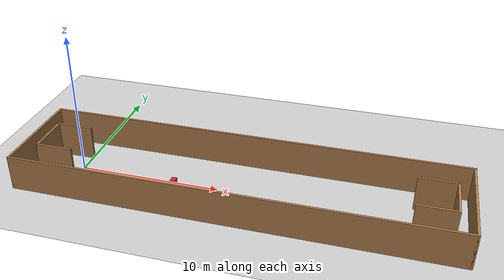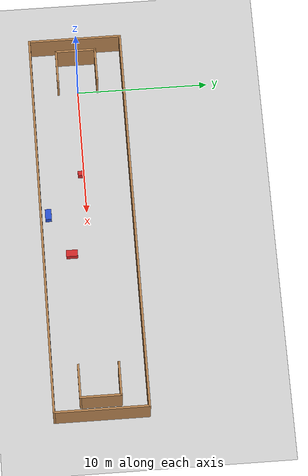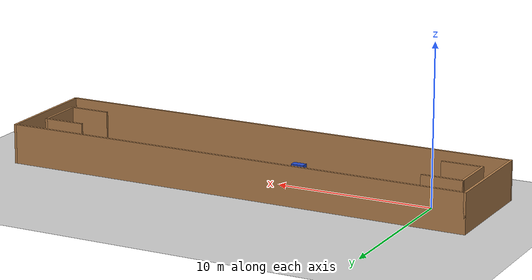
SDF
<sdf version="1.7">
 <world name="default">
  <light name="sun" type="directional">
   <pose>0 0 10 0 -0 0</pose>
   <diffuse>0.8 0.8 0.8 1</diffuse>
   <specular>0.2 0.2 0.2 1</specular>
   <attenuation>
    <range>1000</range>
    <constant>0.9</constant>
    <linear>0.01</linear>
    <quadratic>0.001</quadratic>
   </attenuation>
   <direction>-0.5 0.1 -0.9</direction>
   <spot><inner_angle>0</inner_angle><outer_angle>0</outer_angle><falloff>0</falloff></spot>
  </light>
  <model name="ground_plane">
   <static>1</static>
   <link name="link">
    <collision name="collision">
     <geometry><plane><normal>0 0 1</normal><size>100 100</size></plane></geometry>
     <surface>
      <contact><collide_bitmask>65535</collide_bitmask></contact>
      <friction><ode><mu>100</mu><mu2>50</mu2></ode></friction>
     </surface>
    </collision>
    <visual name="visual">
     <cast_shadows>0</cast_shadows>
     <geometry><plane><normal>0 0 1</normal><size>100 100</size></plane></geometry>
     <material>
      <script><uri>file://media/materials/scripts/gazebo.material</uri><name>Gazebo/Grey</name></script>
     </material>
    </visual>
   </link>
  </model>
  <gravity>0 0 -9.8</gravity>
  <magnetic_field>6e-06 2.3e-05 -4.2e-05</magnetic_field>
  <atmosphere type="adiabatic"/>
  <physics type="ode">
   <max_step_size>0.001</max_step_size>
   <real_time_factor>1</real_time_factor>
   <real_time_update_rate>1000</real_time_update_rate>
  </physics>
  <scene><ambient>0.4 0.4 0.4 1</ambient><background>0.7 0.7 0.7 1</background><shadows>1</shadows></scene>
  <spherical_coordinates>
   <surface_model>EARTH_WGS84</surface_model>
   <latitude_deg>0</latitude_deg>
   <longitude_deg>0</longitude_deg>
   <elevation>0</elevation>
   <heading_deg>0</heading_deg>
  </spherical_coordinates>
  <model name="my_base_walls">
   <link name="Wall_0">
    <collision name="Wall_0_Collision">
     <geometry><box><size>7.15 0.15 2.5</size></box></geometry>
     <pose>0 0 1.25 0 -0 0</pose>
    </collision>
    <visual name="Wall_0_Visual">
     <pose>0 0 1.25 0 -0 0</pose>
     <geometry><box><size>7.15 0.15 2.5</size></box></geometry>
     <material>
      <script><uri>file://media/materials/scripts/gazebo.material</uri><name>Gazebo/Wood</name></script>
      <ambient>1 1 1 1</ambient>
     </material>
     <meta><layer>0</layer></meta>
    </visual>
    <pose>-15 0 0 0 -0 1.5708</pose>
   </link>
   <link name="Wall_10">
    <collision name="Wall_10_Collision">
     <geometry><box><size>2.65 0.15 2.5</size></box></geometry>
     <pose>0 0 1.25 0 -0 0</pose>
    </collision>
    <visual name="Wall_10_Visual">
     <pose>0 0 1.25 0 -0 0</pose>
     <geometry><box><size>2.65 0.15 2.5</size></box></geometry>
     <material>
      <script><uri>file://media/materials/scripts/gazebo.material</uri><name>Gazebo/Wood</name></script>
      <ambient>1 1 1 1</ambient>
     </material>
     <meta><layer>0</layer></meta>
    </visual>
    <pose>-12.75 -1.5 0 0 -0 0</pose>
   </link>
   <link name="Wall_12">
    <collision name="Wall_12_Collision">
     <geometry><box><size>2.65 0.15 2.5</size></box></geometry>
     <pose>0 0 1.25 0 -0 0</pose>
    </collision>
    <visual name="Wall_12_Visual">
     <pose>0 0 1.25 0 -0 0</pose>
     <geometry><box><size>2.65 0.15 2.5</size></box></geometry>
     <material>
      <script><uri>file://media/materials/scripts/gazebo.material</uri><name>Gazebo/Wood</name></script>
      <ambient>1 1 1 1</ambient>
     </material>
     <meta><layer>0</layer></meta>
    </visual>
    <pose>-12.75 1.5 0 0 -0 0</pose>
   </link>
   <link name="Wall_14">
    <collision name="Wall_14_Collision">
     <geometry><box><size>3.15 0.15 2.5</size></box></geometry>
     <pose>0 0 1.25 0 -0 0</pose>
    </collision>
    <visual name="Wall_14_Visual">
     <pose>0 0 1.25 0 -0 0</pose>
     <geometry><box><size>3.15 0.15 2.5</size></box></geometry>
     <material>
      <script><uri>file://media/materials/scripts/gazebo.material</uri><name>Gazebo/Wood</name></script>
      <ambient>1 1 1 1</ambient>
     </material>
     <meta><layer>0</layer></meta>
    </visual>
    <pose>14 0 0 0 -0 -1.5708</pose>
   </link>
   <link name="Wall_15">
    <collision name="Wall_15_Collision">
     <geometry><box><size>2.65 0.15 2.5</size></box></geometry>
     <pose>0 0 1.25 0 -0 0</pose>
    </collision>
    <visual name="Wall_15_Visual">
     <pose>0 0 1.25 0 -0 0</pose>
     <geometry><box><size>2.65 0.15 2.5</size></box></geometry>
     <material>
      <script><uri>file://media/materials/scripts/gazebo.material</uri><name>Gazebo/Wood</name></script>
      <ambient>1 1 1 1</ambient>
     </material>
     <meta><layer>0</layer></meta>
    </visual>
    <pose>12.75 -1.5 0 0 -0 3.14159</pose>
   </link>
   <link name="Wall_17">
    <collision name="Wall_17_Collision">
     <geometry><box><size>2.65 0.15 2.5</size></box></geometry>
     <pose>0 0 1.25 0 -0 0</pose>
    </collision>
    <visual name="Wall_17_Visual">
     <pose>0 0 1.25 0 -0 0</pose>
     <geometry><box><size>2.65 0.15 2.5</size></box></geometry>
     <material>
      <script><uri>file://media/materials/scripts/gazebo.material</uri><name>Gazebo/Wood</name></script>
      <ambient>1 1 1 1</ambient>
     </material>
     <meta><layer>0</layer></meta>
    </visual>
    <pose>12.75 1.5 0 0 -0 3.14159</pose>
   </link>
   <link name="Wall_2">
    <collision name="Wall_2_Collision">
     <geometry><box><size>30.15 0.15 2.5</size></box></geometry>
     <pose>0 0 1.25 0 -0 0</pose>
    </collision>
    <visual name="Wall_2_Visual">
     <pose>0 0 1.25 0 -0 0</pose>
     <geometry><box><size>30.15 0.15 2.5</size></box></geometry>
     <material>
      <script><uri>file://media/materials/scripts/gazebo.material</uri><name>Gazebo/Wood</name></script>
      <ambient>1 1 1 1</ambient>
     </material>
     <meta><layer>0</layer></meta>
    </visual>
    <pose>-0 -3.5 0 0 -0 0</pose>
   </link>
   <link name="Wall_4">
    <collision name="Wall_4_Collision">
     <geometry><box><size>30.15 0.15 2.5</size></box></geometry>
     <pose>0 0 1.25 0 -0 0</pose>
    </collision>
    <visual name="Wall_4_Visual">
     <pose>0 0 1.25 0 -0 0</pose>
     <geometry><box><size>30.15 0.15 2.5</size></box></geometry>
     <material>
      <script><uri>file://media/materials/scripts/gazebo.material</uri><name>Gazebo/Wood</name></script>
      <ambient>1 1 1 1</ambient>
     </material>
     <meta><layer>0</layer></meta>
    </visual>
    <pose>-0 3.5 0 0 -0 0</pose>
   </link>
   <link name="Wall_6">
    <collision name="Wall_6_Collision">
     <geometry><box><size>7.15 0.15 2.5</size></box></geometry>
     <pose>0 0 1.25 0 -0 0</pose>
    </collision>
    <visual name="Wall_6_Visual">
     <pose>0 0 1.25 0 -0 0</pose>
     <geometry><box><size>7.15 0.15 2.5</size></box></geometry>
     <material>
      <script><uri>file://media/materials/scripts/gazebo.material</uri><name>Gazebo/Wood</name></script>
      <ambient>1 1 1 1</ambient>
     </material>
     <meta><layer>0</layer></meta>
    </visual>
    <pose>15 0 0 0 -0 -1.5708</pose>
   </link>
   <link name="Wall_9">
    <collision name="Wall_9_Collision">
     <geometry><box><size>3.15 0.15 2.5</size></box></geometry>
     <pose>0 0 1.25 0 -0 0</pose>
    </collision>
    <visual name="Wall_9_Visual">
     <pose>0 0 1.25 0 -0 0</pose>
     <geometry><box><size>3.15 0.15 2.5</size></box></geometry>
     <material>
      <script><uri>file://media/materials/scripts/gazebo.material</uri><name>Gazebo/Wood</name></script>
      <ambient>1 1 1 1</ambient>
     </material>
     <meta><layer>0</layer></meta>
    </visual>
    <pose>-14 0 0 0 -0 -1.5708</pose>
   </link>
   <static>1</static>
   <pose>11.5 0 0 0 -0 0</pose>
  </model>
  <model name="moving_box_1">
   <pose>13.408884796620251 -1.3579181140784455 0 0 0 0</pose>
   <link name="link">
    <collision name="collision">
     <geometry><box><size>0.5107796366665879 0.8714151683016176 1</size></box></geometry>
     <surface><friction><ode><mu>0.1</mu><mu2>0.1</mu2></ode></friction></surface>
    </collision>
    <visual name="visual">
     <geometry><box><size>0.5107796366665879 0.8714151683016176 1</size></box></geometry>
     <material>
      <script><uri>file://media/materials/scripts/gazebo.material</uri><name>Gazebo/Red</name></script>
     </material>
    </visual>
   </link>
   <plugin name="move_box_plugin_1" filename="/home/otonom/fgm_ws/devel/lib/libmove_box_plugin.so">
    <velocity>-0.12453369175351281 0.17587940233425398 0</velocity>
   </plugin>
  </model>
  <model name="moving_box_2">
   <pose>6.920624957721236 -0.24895356779848887 0 0 0 0</pose>
   <link name="link">
    <collision name="collision">
     <geometry><box><size>0.36552080515884633 0.45312258684919426 1</size></box></geometry>
     <surface><friction><ode><mu>0.1</mu><mu2>0.1</mu2></ode></friction></surface>
    </collision>
    <visual name="visual">
     <geometry><box><size>0.36552080515884633 0.45312258684919426 1</size></box></geometry>
     <material>
      <script><uri>file://media/materials/scripts/gazebo.material</uri><name>Gazebo/Red</name></script>
     </material>
    </visual>
   </link>
   <plugin name="move_box_plugin_2" filename="/home/otonom/fgm_ws/devel/lib/libmove_box_plugin.so">
    <velocity>-0.1512835233647996 0.13504140233827372 0</velocity>
   </plugin>
  </model>
  <model name="moving_box_3">
   <pose>10.124318674028007 -2.938243808619718 0 0 0 0</pose>
   <link name="link">
    <collision name="collision">
     <geometry><box><size>0.8252956369975917 0.4718348533784731 1</size></box></geometry>
     <surface><friction><ode><mu>0.1</mu><mu2>0.1</mu2></ode></friction></surface>
    </collision>
    <visual name="visual">
     <geometry><box><size>0.8252956369975917 0.4718348533784731 1</size></box></geometry>
     <material>
      <script><uri>file://media/materials/scripts/gazebo.material</uri><name>Gazebo/Blue</name></script>
     </material>
    </visual>
   </link>
   <plugin name="move_box_plugin_3" filename="/home/otonom/fgm_ws/devel/lib/libmove_box_plugin.so">
    <velocity>0 0 0</velocity>
   </plugin>
  </model>
 </world>
</sdf>
